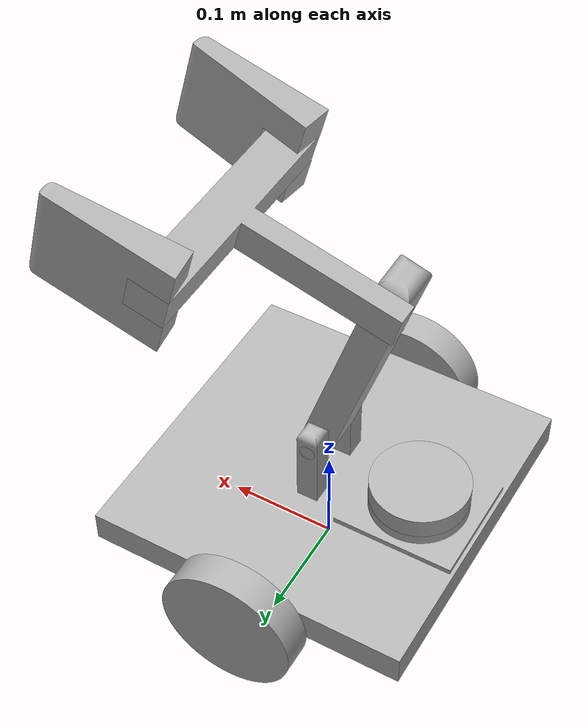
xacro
<?xml version="1.0" ?>
<robot name="finaldesign" xmlns:xacro="http://www.ros.org/wiki/xacro">

<xacro:include filename="$(find finaldesign_description)/urdf/materials.xacro" />
<xacro:include filename="$(find finaldesign_description)/urdf/finaldesign.trans" />
<xacro:include filename="$(find finaldesign_description)/urdf/finaldesign.gazebo" />
<link name="base_link">
  <inertial>
    <origin xyz="-0.0036570411146029298 9.64624872804682e-17 0.07733171782905483" rpy="0 0 0"/>
    <mass value="3.198140661088289"/>
    <inertia ixx="0.022396" iyy="0.025301" izz="0.046154" ixy="0.0" iyz="0.0" ixz="0.000252"/>
  </inertial>
  <visual>
    <origin xyz="0 0 0" rpy="0 0 0"/>
    <geometry>
      <mesh filename="package://finaldesign_description/meshes/base_link.stl" scale="0.001 0.001 0.001"/>
    </geometry>
    <material name="silver"/>
  </visual>
  <collision>
    <origin xyz="0 0 0" rpy="0 0 0"/>
    <geometry>
      <mesh filename="package://finaldesign_description/meshes/base_link.stl" scale="0.001 0.001 0.001"/>
    </geometry>
  </collision>
</link>

<link name="right_wheel_1">
  <inertial>
    <origin xyz="-1.2352049280260327e-17 0.015000000000000013 0.0" rpy="0 0 0"/>
    <mass value="0.3423845118560751"/>
    <inertia ixx="0.00036" iyy="0.000669" izz="0.00036" ixy="-0.0" iyz="0.0" ixz="-0.0"/>
  </inertial>
  <visual>
    <origin xyz="-0.0 -0.15 -0.0625" rpy="0 0 0"/>
    <geometry>
      <mesh filename="package://finaldesign_description/meshes/right_wheel_1.stl" scale="0.001 0.001 0.001"/>
    </geometry>
    <material name="silver"/>
  </visual>
  <collision>
    <origin xyz="-0.0 -0.15 -0.0625" rpy="0 0 0"/>
    <geometry>
      <mesh filename="package://finaldesign_description/meshes/right_wheel_1.stl" scale="0.001 0.001 0.001"/>
    </geometry>
  </collision>
</link>

<link name="left_wheel_1">
  <inertial>
    <origin xyz="-1.2352049280260327e-17 -0.015000000000000013 0.0" rpy="0 0 0"/>
    <mass value="0.3423845118560751"/>
    <inertia ixx="0.00036" iyy="0.000669" izz="0.00036" ixy="-0.0" iyz="0.0" ixz="-0.0"/>
  </inertial>
  <visual>
    <origin xyz="-0.0 0.15 -0.0625" rpy="0 0 0"/>
    <geometry>
      <mesh filename="package://finaldesign_description/meshes/left_wheel_1.stl" scale="0.001 0.001 0.001"/>
    </geometry>
    <material name="silver"/>
  </visual>
  <collision>
    <origin xyz="-0.0 0.15 -0.0625" rpy="0 0 0"/>
    <geometry>
      <mesh filename="package://finaldesign_description/meshes/left_wheel_1.stl" scale="0.001 0.001 0.001"/>
    </geometry>
  </collision>
</link>

<link name="Component8_1">
  <inertial>
    <origin xyz="0.0 0.0 0.009999999999999995" rpy="0 0 0"/>
    <mass value="0.1348685726186098"/>
    <inertia ixx="7.3e-05" iyy="7.3e-05" izz="0.000137" ixy="-0.0" iyz="-0.0" ixz="0.0"/>
  </inertial>
  <visual>
    <origin xyz="0.09 -0.0 -0.1075" rpy="0 0 0"/>
    <geometry>
      <mesh filename="package://finaldesign_description/meshes/Component8_1.stl" scale="0.001 0.001 0.001"/>
    </geometry>
    <material name="silver"/>
  </visual>
  <collision>
    <origin xyz="0.09 -0.0 -0.1075" rpy="0 0 0"/>
    <geometry>
      <mesh filename="package://finaldesign_description/meshes/Component8_1.stl" scale="0.001 0.001 0.001"/>
    </geometry>
  </collision>
</link>

<link name="Component2_1">
  <inertial>
    <origin xyz="0.09194772525892057 0.04 0.024637318729006485" rpy="0 0 0"/>
    <mass value="0.29750431282622997"/>
    <inertia ixx="0.000156" iyy="0.001374" izz="0.001308" ixy="-0.0" iyz="0.0" ixz="-0.000332"/>
  </inertial>
  <visual>
    <origin xyz="-0.0 0.04 -0.1525" rpy="0 0 0"/>
    <geometry>
      <mesh filename="package://finaldesign_description/meshes/Component2_1.stl" scale="0.001 0.001 0.001"/>
    </geometry>
    <material name="silver"/>
  </visual>
  <collision>
    <origin xyz="-0.0 0.04 -0.1525" rpy="0 0 0"/>
    <geometry>
      <mesh filename="package://finaldesign_description/meshes/Component2_1.stl" scale="0.001 0.001 0.001"/>
    </geometry>
  </collision>
</link>

<link name="Component3_1">
  <inertial>
    <origin xyz="0.11210365947142531 0.04935903979651904 0.03077041053487456" rpy="0 0 0"/>
    <mass value="0.3506940885621103"/>
    <inertia ixx="0.001106" iyy="0.000859" izz="0.001804" ixy="-2.5e-05" iyz="-7e-06" ixz="-0.000202"/>
  </inertial>
  <visual>
    <origin xyz="-0.193185 0.02 -0.204264" rpy="0 0 0"/>
    <geometry>
      <mesh filename="package://finaldesign_description/meshes/Component3_1.stl" scale="0.001 0.001 0.001"/>
    </geometry>
    <material name="silver"/>
  </visual>
  <collision>
    <origin xyz="-0.193185 0.02 -0.204264" rpy="0 0 0"/>
    <geometry>
      <mesh filename="package://finaldesign_description/meshes/Component3_1.stl" scale="0.001 0.001 0.001"/>
    </geometry>
  </collision>
</link>

<link name="Component6_1">
  <inertial>
    <origin xyz="0.022341136656001626 0.011310037261532749 0.005986524413508304" rpy="0 0 0"/>
    <mass value="0.22264448602810621"/>
    <inertia ixx="0.000184" iyy="0.000405" izz="0.000242" ixy="1.3e-05" iyz="3e-06" ixz="-1.7e-05"/>
  </inertial>
  <visual>
    <origin xyz="-0.348309 0.08 -0.246578" rpy="0 0 0"/>
    <geometry>
      <mesh filename="package://finaldesign_description/meshes/Component6_1.stl" scale="0.001 0.001 0.001"/>
    </geometry>
    <material name="silver"/>
  </visual>
  <collision>
    <origin xyz="-0.348309 0.08 -0.246578" rpy="0 0 0"/>
    <geometry>
      <mesh filename="package://finaldesign_description/meshes/Component6_1.stl" scale="0.001 0.001 0.001"/>
    </geometry>
  </collision>
</link>

<link name="Component7_1">
  <inertial>
    <origin xyz="0.022341174865850022 -0.011310030365267815 0.005986531564266734" rpy="0 0 0"/>
    <mass value="0.2226446411216698"/>
    <inertia ixx="0.000184" iyy="0.000405" izz="0.000242" ixy="-1.3e-05" iyz="-3e-06" ixz="-1.7e-05"/>
  </inertial>
  <visual>
    <origin xyz="-0.348309 -0.14 -0.246578" rpy="0 0 0"/>
    <geometry>
      <mesh filename="package://finaldesign_description/meshes/Component7_1.stl" scale="0.001 0.001 0.001"/>
    </geometry>
    <material name="silver"/>
  </visual>
  <collision>
    <origin xyz="-0.348309 -0.14 -0.246578" rpy="0 0 0"/>
    <geometry>
      <mesh filename="package://finaldesign_description/meshes/Component7_1.stl" scale="0.001 0.001 0.001"/>
    </geometry>
  </collision>
</link>

<joint name="Revolute_1" type="continuous">
  <origin xyz="0.0 0.15 0.0625" rpy="0 0 0"/>
  <parent link="base_link"/>
  <child link="right_wheel_1"/>
  <axis xyz="0.0 1.0 0.0"/>
</joint>

<joint name="Revolute_2" type="continuous">
  <origin xyz="0.0 -0.15 0.0625" rpy="0 0 0"/>
  <parent link="base_link"/>
  <child link="left_wheel_1"/>
  <axis xyz="0.0 1.0 0.0"/>
</joint>

<joint name="Rigid_3" type="fixed">
  <origin xyz="-0.09 0.0 0.1075" rpy="0 0 0"/>
  <parent link="base_link"/>
  <child link="Component8_1"/>
</joint>

<joint name="Revolute_4" type="revolute">
  <origin xyz="0.0 -0.04 0.1525" rpy="0 0 0"/>
  <parent link="base_link"/>
  <child link="Component2_1"/>
  <axis xyz="0.0 -1.0 0.0"/>
  <limit upper="2.96706" lower="0.261799" effort="100" velocity="100"/>
</joint>

<joint name="Revolute_7" type="revolute">
  <origin xyz="0.193185 0.02 0.051764" rpy="0 0 0"/>
  <parent link="Component2_1"/>
  <child link="Component3_1"/>
  <axis xyz="0.0 1.0 0.0"/>
  <limit upper="2.96706" lower="0.261799" effort="100" velocity="100"/>
</joint>

<joint name="Slider_8" type="prismatic">
  <origin xyz="0.155124 -0.06 0.042314" rpy="0 0 0"/>
  <parent link="Component3_1"/>
  <child link="Component6_1"/>
  <axis xyz="0.0 -1.0 0.0"/>
  <limit upper="0.0" lower="-0.06" effort="100" velocity="100"/>
</joint>

<joint name="Slider_9" type="prismatic">
  <origin xyz="0.155124 0.16 0.042314" rpy="0 0 0"/>
  <parent link="Component3_1"/>
  <child link="Component7_1"/>
  <axis xyz="0.0 1.0 0.0"/>
  <limit upper="0.0" lower="-0.06" effort="100" velocity="100"/>
</joint>

</robot>

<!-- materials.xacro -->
<robot name="finaldesign" xmlns:xacro="http://www.ros.org/wiki/xacro" >

<material name="silver">
  <color rgba="0.700 0.700 0.700 1.000"/>
</material>

</robot>

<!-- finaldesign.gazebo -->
<robot name="finaldesign" xmlns:xacro="http://www.ros.org/wiki/xacro" >

<xacro:property name="body_color" value="Gazebo/Silver" />

<gazebo>
  <plugin name="control" filename="libgazebo_ros_control.so"/>
</gazebo>
<gazebo reference="base_link">
  <material>${body_color}</material>
  <mu1>0.1</mu1>
  <mu2>0.1</mu2>
  <selfCollide>true</selfCollide>
  <gravity>true</gravity>
</gazebo>

<gazebo reference="right_wheel_1">
  <material>${body_color}</material>
  <mu1>1500</mu1>
  <mu2>1500</mu2>
  <selfCollide>true</selfCollide>
</gazebo>

<gazebo reference="left_wheel_1">
  <material>${body_color}</material>
  <mu1>1500</mu1>
  <mu2>1500</mu2>
  <selfCollide>true</selfCollide>
</gazebo>

<gazebo reference="Component8_1">
  <material>${body_color}</material>
  <mu1>0.2</mu1>
  <mu2>0.2</mu2>
  <selfCollide>true</selfCollide>
</gazebo>

<gazebo reference="Component2_1">
  <material>${body_color}</material>
  <mu1>0.2</mu1>
  <mu2>0.2</mu2>
  <selfCollide>true</selfCollide>
</gazebo>

<gazebo reference="Component3_1">
  <material>${body_color}</material>
  <mu1>0.2</mu1>
  <mu2>0.2</mu2>
  <selfCollide>true</selfCollide>
</gazebo>

<gazebo reference="Component6_1">
  <material>${body_color}</material>
  <mu1>0.2</mu1>
  <mu2>0.2</mu2>
  <selfCollide>true</selfCollide>
</gazebo>

<gazebo reference="Component7_1">
  <material>${body_color}</material>
  <mu1>0.2</mu1>
  <mu2>0.2</mu2>
  <selfCollide>true</selfCollide>
</gazebo>
<gazebo>
  <plugin name="differential_drive_controller" filename="libgazebo_ros_diff_drive.so">

    <!-- Plugin update rate in Hz -->
    <updateRate>100</updateRate>

    <!-- Name of left joint, defaults to `left_joint` -->
    <leftJoint>Revolute_2</leftJoint>

    <!-- Name of right joint, defaults to `right_joint` -->
    <rightJoint>Revolute_1</rightJoint>

    <!-- The distance from the center of one wheel to the other, in meters, defaults to 0.34 m -->
    <wheelSeparation>0.2</wheelSeparation>

    <!-- Diameter of the wheels, in meters, defaults to 0.15 m -->
    <wheelDiameter>0.1</wheelDiameter>

    <!-- Wheel acceleration, in rad/s^2, defaults to 0.0 rad/s^2 -->
    <wheelAcceleration>1.0</wheelAcceleration>

    <!-- Maximum torque which the wheels can produce, in Nm, defaults to 5 Nm -->
    <wheelTorque>50</wheelTorque>

    <!-- Topic to receive geometry_msgs/Twist message commands, defaults to `cmd_vel` -->
    <commandTopic>cmd_vel</commandTopic>

    <!-- Topic to publish nav_msgs/Odometry messages, defaults to `odom` -->
    <odometryTopic>odom</odometryTopic>

    <!-- Odometry frame, defaults to `odom` -->
    <odometryFrame>odom</odometryFrame>

    <!-- Robot frame to calculate odometry from, defaults to `base_footprint` -->
    <robotBaseFrame>base_link</robotBaseFrame>

    <!-- Odometry source, 0 for ENCODER, 1 for WORLD, defaults to WORLD -->
    <odometrySource>1</odometrySource>

    <!-- Set to true to publish transforms for the wheel links, defaults to false -->
    <publishWheelTF>true</publishWheelTF>

    <!-- Set to true to publish transforms for the odometry, defaults to true -->
    <publishOdom>true</publishOdom>

    <!-- Set to true to publish sensor_msgs/JointState on /joint_states for the wheel joints, defaults to false -->
    <publishWheelJointState>true</publishWheelJointState>

    <!-- Set to true to swap right and left wheels, defaults to true -->
    <legacyMode>false</legacyMode>
  </plugin>
</gazebo>
<!-- hokuyo -->
  <gazebo reference="Component8_1">
    <sensor type="ray" name="head_hokuyo_sensor">
      <pose>0 0 0 0 0 0</pose>
      <visualize>true</visualize>
      <update_rate>40</update_rate>
      <ray>
        <scan>
          <horizontal>
            <samples>720</samples>
            <resolution>1</resolution>
            <min_angle>1.570796</min_angle>
            <max_angle>4.71</max_angle>
          </horizontal>
        </scan>
        <range>
          <min>0.10</min>
          <max>30.0</max>
          <resolution>0.01</resolution>
        </range>
        <noise>
          <type>gaussian</type>
          <mean>0.0</mean>
          <stddev>0.01</stddev>
        </noise>
      </ray>
      <plugin name="gazebo_ros_head_hokuyo_controller" filename="libgazebo_ros_laser.so">
        <topicName>/scan</topicName>
        <frameName>Component8_1</frameName>
      </plugin>
    </sensor>
  </gazebo>

</robot>
